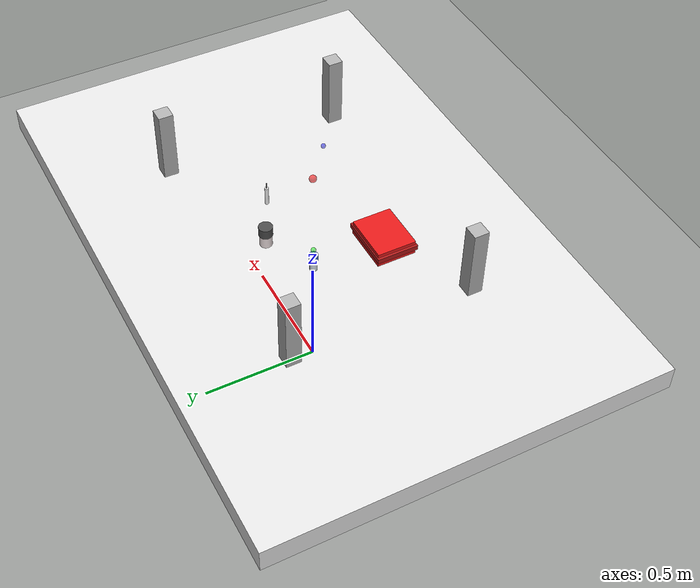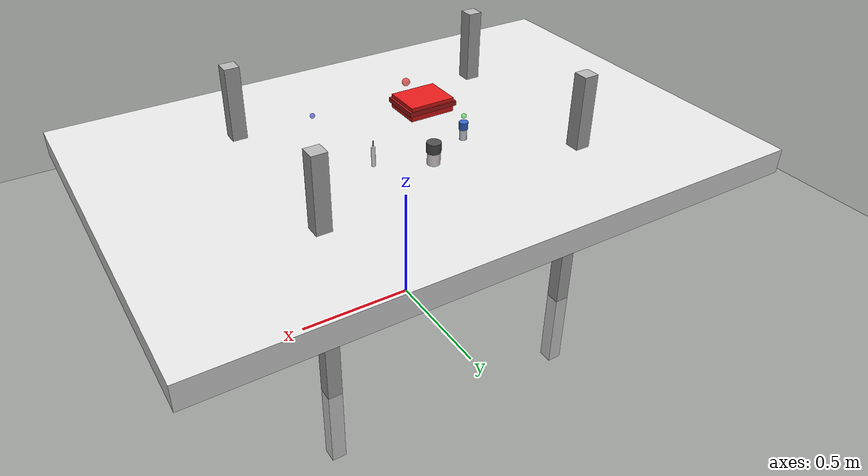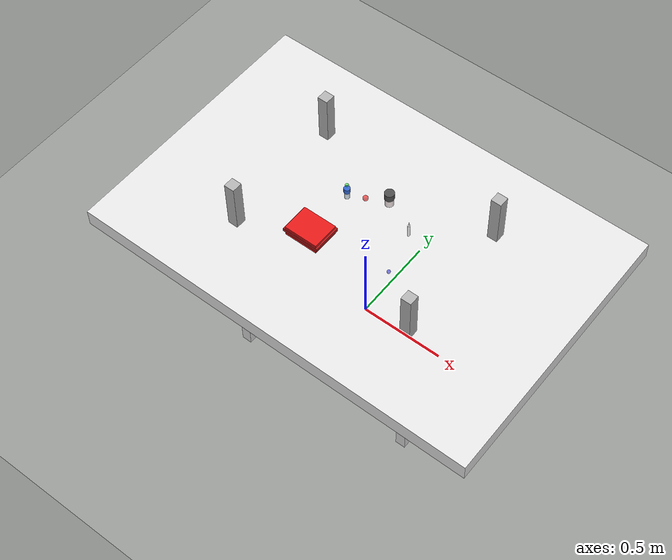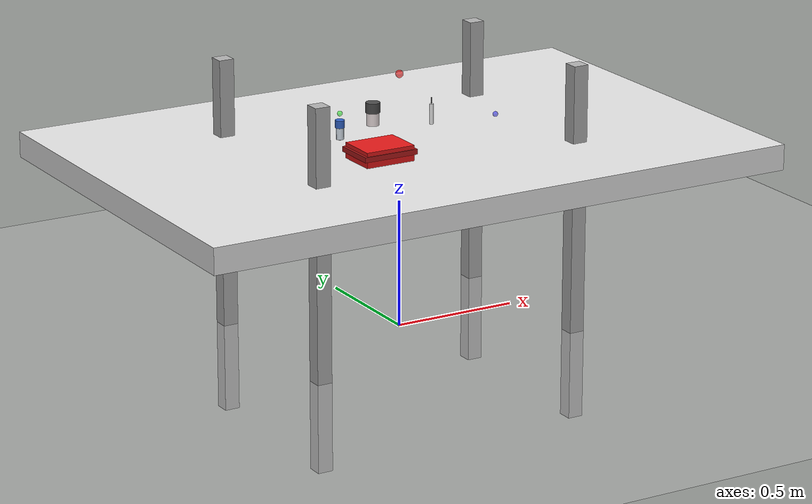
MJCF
<mujoco model="triage_arena">
  <compiler angle="radian" meshdir="../meshes"/>

  <option timestep="0.002" gravity="0 0 -9.81" iterations="100" jacobian="dense"/>

  <default>
    <joint armature="0.001" damping="5" frictionloss="0.05"/>
    <geom rgba="0.6 0.6 0.6 1" margin="0.001" condim="3" friction="0.8 0.01 0.01"/>
  </default>

  <asset>
    <texture name="grid" type="2d" builtin="checker" width="512" height="512" rgb1="0.8 0.8 0.8" rgb2="0.9 0.9 0.9"/>
    <material name="grid_material" texture="grid" texrepeat="10 10"/>

    <texture name="metal" type="2d" builtin="checker" width="256" height="256" rgb1="0.6 0.6 0.6" rgb2="0.8 0.8 0.8"/>
    <material name="metal_mat" texture="metal" texrepeat="2 2"/>

    <texture name="glass" type="2d" builtin="gradient" width="256" height="256" rgb1="0.8 0.9 1" rgb2="0.6 0.8 0.95"/>
    <material name="glass_mat" texture="glass" rgba="1 1 1 0.7"/>

    <texture name="label" type="2d" builtin="gradient" width="256" height="256" rgb1="1 0.9 0.9" rgb2="0.9 0.8 0.8"/>
    <material name="label_mat" texture="label"/>
  </asset>

  <worldbody>
    <geom name="ground" type="plane" size="5 5 0.1" rgba="0.8 0.8 0.8 1" material="grid_material"/>

    <light name="light1" pos="0 0 3" dir="0 0 -1" diffuse="1 1 1" specular="0.3 0.3 0.3"/>
    <light name="light2" pos="2 2 2" dir="-1 -1 -1" diffuse="0.5 0.5 0.5"/>
    <light name="light3" pos="-2 -2 2" dir="1 1 -1" diffuse="0.5 0.5 0.5"/>

    <!-- Triage table -->
    <body name="table" pos="0 0 0.7">
      <geom name="table_top" type="box" size="1.2 0.8 0.05" rgba="0.9 0.9 0.9 1"/>
      <geom name="table_leg1" type="box" size="0.03 0.03 0.7" pos="-0.55 -0.37 -0.35" rgba="0.7 0.7 0.7 1"/>
      <geom name="table_leg2" type="box" size="0.03 0.03 0.7" pos="0.55 -0.37 -0.35" rgba="0.7 0.7 0.7 1"/>
      <geom name="table_leg3" type="box" size="0.03 0.03 0.7" pos="-0.55 0.37 -0.35" rgba="0.7 0.7 0.7 1"/>
      <geom name="table_leg4" type="box" size="0.03 0.03 0.7" pos="0.55 0.37 -0.35" rgba="0.7 0.7 0.7 1"/>
    </body>

    <!-- Dexterous Hand -->
    <body name="hand_root" pos="0.5 0 1.0">
      <freejoint name="hand_freejoint"/>
      <include file="../robots/dexhand.xml"/>
    </body>

    <!-- Medical vial for triage task -->
    <body name="vial" pos="-0.2 0.1 0.75">
      <freejoint name="vial_freejoint"/>
      <geom name="vial_body" type="cylinder" size="0.015 0.06" rgba="0.9 0.95 1 0.8" material="glass_mat"/>
      <geom name="vial_cap" type="cylinder" size="0.018 0.015" pos="0 0 0.06" rgba="0.2 0.4 0.8 1" material="metal_mat"/>
      <geom name="vial_label" type="cylinder" size="0.014 0.025" pos="0 0 0.02" rgba="1 1 1 0.9" material="label_mat"/>
      <geom name="vial_liquid" type="cylinder" size="0.012 0.03" pos="0 0 -0.01" rgba="0.6 0.8 1 0.6"/>
    </body>

    <!-- Pill bottle -->
    <body name="pill_bottle" pos="0.0 0.2 0.75">
      <freejoint name="pill_bottle_freejoint"/>
      <geom name="pill_bottle_body" type="cylinder" size="0.025 0.07" rgba="0.95 0.9 0.9 0.95" material="glass_mat"/>
      <geom name="pill_bottle_cap" type="cylinder" size="0.028 0.02" pos="0 0 0.07" rgba="0.3 0.3 0.3 1" material="metal_mat"/>
    </body>

    <!-- Syringe -->
    <body name="syringe" pos="0.2 0.1 0.75">
      <freejoint name="syringe_freejoint"/>
      <geom name="syringe_barrel" type="cylinder" size="0.008 0.08" rgba="0.95 0.95 0.95 0.9" material="glass_mat"/>
      <geom name="syringe_plunger" type="cylinder" size="0.007 0.03" pos="0 0 -0.05" rgba="0.6 0.6 0.6 1" material="metal_mat"/>
      <geom name="syringe_tip" type="cylinder" size="0.002 0.015" pos="0 0 0.09" rgba="0.5 0.5 0.5 1"/>
    </body>

    <!-- Medical box -->
    <body name="medical_box" pos="-0.2 -0.2 0.75">
      <freejoint name="box_freejoint"/>
      <geom name="box_body" type="box" size="0.1 0.08 0.06" rgba="0.9 0.1 0.1 1"/>
      <geom name="box_lid" type="box" size="0.11 0.085 0.01" pos="0 0 0.035" rgba="0.7 0.1 0.1 1"/>
    </body>

    <!-- Workspace markers -->
    <site name="workspace_center" pos="0 0 1.0" size="0.015" rgba="1 0 0 0.6"/>
    <site name="vial_target" pos="-0.2 0.1 0.85" size="0.01" rgba="0 1 0 0.5"/>
    <site name="goal_position" pos="0.3 -0.2 0.85" size="0.01" rgba="0 0 1 0.5"/>

    <!-- Cameras -->
    <camera name="main_camera" pos="1.5 1.5 1.5" lookat="0 0 0.8" fovy="50"/>
    <camera name="closeup_camera" pos="0.5 0.5 1.2" lookat="-0.2 0.1 0.75" fovy="40"/>
    <camera name="top_camera" pos="0 0 2.5" lookat="0 0 0.8" fovy="60"/>
  </worldbody>

  <sensor>
    <jointpos name="all_joint_positions"/>
    <jointvel name="all_joint_velocities"/>
    <actuatorforce name="all_torques"/>

    <framepos name="hand_pos" objtype="body" objname="palm"/>
    <framequat name="hand_quat" objtype="body" objname="palm"/>
    <framevel name="hand_vel" objtype="body" objname="palm"/>

    <touch name="thumb_touch" objtype="geom" objname="thumb_distal_geom"/>
    <touch name="index_touch" objtype="geom" objname="index_distal_geom"/>
    <touch name="middle_touch" objtype="geom" objname="middle_distal_geom"/>
    <touch name="ring_touch" objtype="geom" objname="ring_distal_geom"/>
    <touch name="pinky_touch" objtype="geom" objname="pinky_distal_geom"/>

    <accelerometer name="palm_imu_acc" objtype="body" objname="palm"/>
    <gyro name="palm_imu_gyro" objtype="body" objname="palm"/>

    <contactforce name="contact_forces"/>
    <contactnum name="contact_count"/>

    <framepos name="vial_pos" objtype="body" objname="vial"/>
    <framequat name="vial_quat" objtype="body" objname="vial"/>
    <framevel name="vial_vel" objtype="body" objname="vial"/>

    <framepos name="pill_bottle_pos" objtype="body" objname="pill_bottle"/>
    <framequat name="pill_bottle_quat" objtype="body" objname="pill_bottle"/>

    <framepos name="syringe_pos" objtype="body" objname="syringe"/>
    <framequat name="syringe_quat" objtype="body" objname="syringe"/>

    <energy name="kinetic_energy" type="kinetic"/>
    <energy name="potential_energy" type="potential"/>
  </sensor>

  <keyframe>
    <key name="initial_pose" qpos="0.5 0 1.0 1 0 0 0 0 0 0 0 0 0 0 0 0 0 0 0 0 0 0 0 0 0 0 0" qvel="0 0 0 0 0 0 0 0 0 0 0 0 0 0 0 0 0 0 0 0 0 0 0 0 0 0 0"/>
    <key name="grasp_pose" qpos="0.5 0 0.8 1 0 0 0 0.5 1.2 1.0 0.5 1.2 1.0 0.8 0.3 1.2 1.0 0.8 0.3 1.2 1.0 0.8 0.4 1.2 1.0 0.8 0" qvel="0 0 0 0 0 0 0 0 0 0 0 0 0 0 0 0 0 0 0 0 0 0 0 0 0 0 0"/>
  </keyframe>
</mujoco>

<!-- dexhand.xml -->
<mujoco model="dexterous_hand">
  <compiler angle="radian" meshdir="../meshes"/>

  <option timestep="0.002" gravity="0 0 -9.81" iterations="50" jacobian="dense">
    <flag constraint="enable" contact="enable" energy="enable"/>
    <numeric solver="PGS" tolerance="1e-6" iterations="50"/>
  </option>

  <default>
    <joint armature="0.001" damping="5" frictionloss="0.05" limited="true"/>
    <geom rgba="0.6 0.6 0.6 1" margin="0.001" condim="3" friction="0.8 0.01 0.01"/>
    <actuator kp="1000" kv="100"/>
  </default>

  <asset>
    <texture name="metal" type="2d" builtin="checker" width="256" height="256" rgb1="0.7 0.7 0.7" rgb2="0.9 0.9 0.9"/>
    <material name="metal_mat" texture="metal" texrepeat="2 2"/>
    <texture name="skin" type="2d" builtin="gradient" width="256" height="256" rgb1="0.8 0.6 0.4" rgb2="0.6 0.4 0.3"/>
    <material name="skin_mat" texture="skin"/>
  </asset>

  <worldbody>
    <body name="palm" pos="0 0 0">
      <geom name="palm_geom" type="box" size="0.08 0.06 0.02" rgba="0.8 0.6 0.4 1" material="skin_mat"/>

      <!-- Thumb -->
      <body name="thumb_base" pos="0.06 0.03 0">
        <joint name="thumb_abd" type="hinge" axis="0 0 1" range="-0.8 0.8" stiffness="500"/>
        <geom name="thumb_base_geom" type="capsule" size="0.015 0.025" rgba="0.7 0.5 0.3 1" material="skin_mat"/>

        <body name="thumb_proximal" pos="0 0 -0.025">
          <joint name="thumb_flex1" type="hinge" axis="1 0 0" range="0 1.5" stiffness="500"/>
          <geom name="thumb_proximal_geom" type="capsule" size="0.012 0.025" rgba="0.7 0.5 0.3 1" material="skin_mat"/>

          <body name="thumb_distal" pos="0 0 -0.025">
            <joint name="thumb_flex2" type="hinge" axis="1 0 0" range="0 1.8" stiffness="500"/>
            <geom name="thumb_distal_geom" type="sphere" size="0.015" rgba="0.9 0.7 0.5 1" material="skin_mat"/>
          </body>
        </body>
      </body>

      <!-- Index Finger -->
      <body name="index_base" pos="0.06 -0.005 0">
        <joint name="index_abd" type="hinge" axis="0 0 1" range="-0.5 0.5" stiffness="500"/>
        <geom name="index_base_geom" type="capsule" size="0.012 0.02" rgba="0.7 0.5 0.3 1" material="skin_mat"/>

        <body name="index_proximal" pos="0 0 -0.02">
          <joint name="index_flex1" type="hinge" axis="1 0 0" range="0 1.8" stiffness="500"/>
          <geom name="index_proximal_geom" type="capsule" size="0.01 0.025" rgba="0.7 0.5 0.3 1" material="skin_mat"/>

          <body name="index_middle" pos="0 0 -0.025">
            <joint name="index_flex2" type="hinge" axis="1 0 0" range="0 1.8" stiffness="500"/>
            <geom name="index_middle_geom" type="capsule" size="0.008 0.022" rgba="0.7 0.5 0.3 1" material="skin_mat"/>

            <body name="index_distal" pos="0 0 -0.022">
              <joint name="index_flex3" type="hinge" axis="1 0 0" range="0 1.5" stiffness="500"/>
              <geom name="index_distal_geom" type="sphere" size="0.012" rgba="0.9 0.7 0.5 1" material="skin_mat"/>
            </body>
          </body>
        </body>
      </body>

      <!-- Middle Finger -->
      <body name="middle_base" pos="0.06 -0.02 0">
        <joint name="middle_abd" type="hinge" axis="0 0 1" range="-0.3 0.3" stiffness="500"/>
        <geom name="middle_base_geom" type="capsule" size="0.012 0.02" rgba="0.7 0.5 0.3 1" material="skin_mat"/>

        <body name="middle_proximal" pos="0 0 -0.02">
          <joint name="middle_flex1" type="hinge" axis="1 0 0" range="0 1.8" stiffness="500"/>
          <geom name="middle_proximal_geom" type="capsule" size="0.01 0.027" rgba="0.7 0.5 0.3 1" material="skin_mat"/>

          <body name="middle_middle" pos="0 0 -0.027">
            <joint name="middle_flex2" type="hinge" axis="1 0 0" range="0 1.8" stiffness="500"/>
            <geom name="middle_middle_geom" type="capsule" size="0.008 0.024" rgba="0.7 0.5 0.3 1" material="skin_mat"/>

            <body name="middle_distal" pos="0 0 -0.024">
              <joint name="middle_flex3" type="hinge" axis="1 0 0" range="0 1.5" stiffness="500"/>
              <geom name="middle_distal_geom" type="sphere" size="0.012" rgba="0.9 0.7 0.5 1" material="skin_mat"/>
            </body>
          </body>
        </body>
      </body>

      <!-- Ring Finger -->
      <body name="ring_base" pos="0.06 -0.035 0">
        <joint name="ring_abd" type="hinge" axis="0 0 1" range="-0.3 0.3" stiffness="500"/>
        <geom name="ring_base_geom" type="capsule" size="0.012 0.02" rgba="0.7 0.5 0.3 1" material="skin_mat"/>

        <body name="ring_proximal" pos="0 0 -0.02">
          <joint name="ring_flex1" type="hinge" axis="1 0 0" range="0 1.8" stiffness="500"/>
          <geom name="ring_proximal_geom" type="capsule" size="0.01 0.025" rgba="0.7 0.5 0.3 1" material="skin_mat"/>

          <body name="ring_middle" pos="0 0 -0.025">
            <joint name="ring_flex2" type="hinge" axis="1 0 0" range="0 1.8" stiffness="500"/>
            <geom name="ring_middle_geom" type="capsule" size="0.008 0.022" rgba="0.7 0.5 0.3 1" material="skin_mat"/>

            <body name="ring_distal" pos="0 0 -0.022">
              <joint name="ring_flex3" type="hinge" axis="1 0 0" range="0 1.5" stiffness="500"/>
              <geom name="ring_distal_geom" type="sphere" size="0.011" rgba="0.9 0.7 0.5 1" material="skin_mat"/>
            </body>
          </body>
        </body>
      </body>

      <!-- Pinky Finger -->
      <body name="pinky_base" pos="0.06 -0.05 0">
        <joint name="pinky_abd" type="hinge" axis="0 0 1" range="-0.6 0.2" stiffness="500"/>
        <geom name="pinky_base_geom" type="capsule" size="0.01 0.018" rgba="0.7 0.5 0.3 1" material="skin_mat"/>

        <body name="pinky_proximal" pos="0 0 -0.018">
          <joint name="pinky_flex1" type="hinge" axis="1 0 0" range="0 1.8" stiffness="500"/>
          <geom name="pinky_proximal_geom" type="capsule" size="0.009 0.022" rgba="0.7 0.5 0.3 1" material="skin_mat"/>

          <body name="pinky_middle" pos="0 0 -0.022">
            <joint name="pinky_flex2" type="hinge" axis="1 0 0" range="0 1.8" stiffness="500"/>
            <geom name="pinky_middle_geom" type="capsule" size="0.007 0.02" rgba="0.7 0.5 0.3 1" material="skin_mat"/>

            <body name="pinky_distal" pos="0 0 -0.02">
              <joint name="pinky_flex3" type="hinge" axis="1 0 0" range="0 1.5" stiffness="500"/>
              <geom name="pinky_distal_geom" type="sphere" size="0.01" rgba="0.9 0.7 0.5 1" material="skin_mat"/>
            </body>
          </body>
        </body>
      </body>
    </body>
  </worldbody>

  <actuator>
    <position name="thumb_abd_motor" joint="thumb_abd" kp="1000" kv="100"/>
    <position name="thumb_flex1_motor" joint="thumb_flex1" kp="1000" kv="100"/>
    <position name="thumb_flex2_motor" joint="thumb_flex2" kp="1000" kv="100"/>

    <position name="index_abd_motor" joint="index_abd" kp="1000" kv="100"/>
    <position name="index_flex1_motor" joint="index_flex1" kp="1000" kv="100"/>
    <position name="index_flex2_motor" joint="index_flex2" kp="1000" kv="100"/>
    <position name="index_flex3_motor" joint="index_flex3" kp="1000" kv="100"/>

    <position name="middle_abd_motor" joint="middle_abd" kp="1000" kv="100"/>
    <position name="middle_flex1_motor" joint="middle_flex1" kp="1000" kv="100"/>
    <position name="middle_flex2_motor" joint="middle_flex2" kp="1000" kv="100"/>
    <position name="middle_flex3_motor" joint="middle_flex3" kp="1000" kv="100"/>

    <position name="ring_abd_motor" joint="ring_abd" kp="1000" kv="100"/>
    <position name="ring_flex1_motor" joint="ring_flex1" kp="1000" kv="100"/>
    <position name="ring_flex2_motor" joint="ring_flex2" kp="1000" kv="100"/>
    <position name="ring_flex3_motor" joint="ring_flex3" kp="1000" kv="100"/>

    <position name="pinky_abd_motor" joint="pinky_abd" kp="1000" kv="100"/>
    <position name="pinky_flex1_motor" joint="pinky_flex1" kp="1000" kv="100"/>
    <position name="pinky_flex2_motor" joint="pinky_flex2" kp="1000" kv="100"/>
    <position name="pinky_flex3_motor" joint="pinky_flex3" kp="1000" kv="100"/>
  </actuator>

  <sensor>
    <jointpos name="joint_positions"/>
    <jointvel name="joint_velocities"/>
    <actuatorforce name="joint_torques"/>

    <framepos name="palm_pos" objtype="body" objname="palm"/>
    <framequat name="palm_quat" objtype="body" objname="palm"/>
    <framevel name="palm_vel" objtype="body" objname="palm"/>
    <frameacc name="palm_acc" objtype="body" objname="palm"/>

    <touch name="thumb_touch" objtype="geom" objname="thumb_distal_geom"/>
    <touch name="index_touch" objtype="geom" objname="index_distal_geom"/>
    <touch name="middle_touch" objtype="geom" objname="middle_distal_geom"/>
    <touch name="ring_touch" objtype="geom" objname="ring_distal_geom"/>
    <touch name="pinky_touch" objtype="geom" objname="pinky_distal_geom"/>

    <accelerometer name="palm_imu_acc" objtype="body" objname="palm"/>
    <gyro name="palm_imu_gyro" objtype="body" objname="palm"/>

    <contactforce name="contact_forces"/>
    <contactnum name="contact_count"/>

    <tendonpos name="tendon_positions"/>
    <tendonvel name="tendon_velocities"/>

    <energy name="system_energy"/>
  </sensor>

  <tendon>
    <spatial name="thumb_tendon" limited="true" range="0 0.1">
      <site site="thumb_tendon_site"/>
      <joint joint="thumb_flex1"/>
      <joint joint="thumb_flex2"/>
    </spatial>
  </tendon>

  <equality>
    <tendon name="thumb_tendon_eq" tendon="thumb_tendon"/>
  </equality>
</mujoco>
